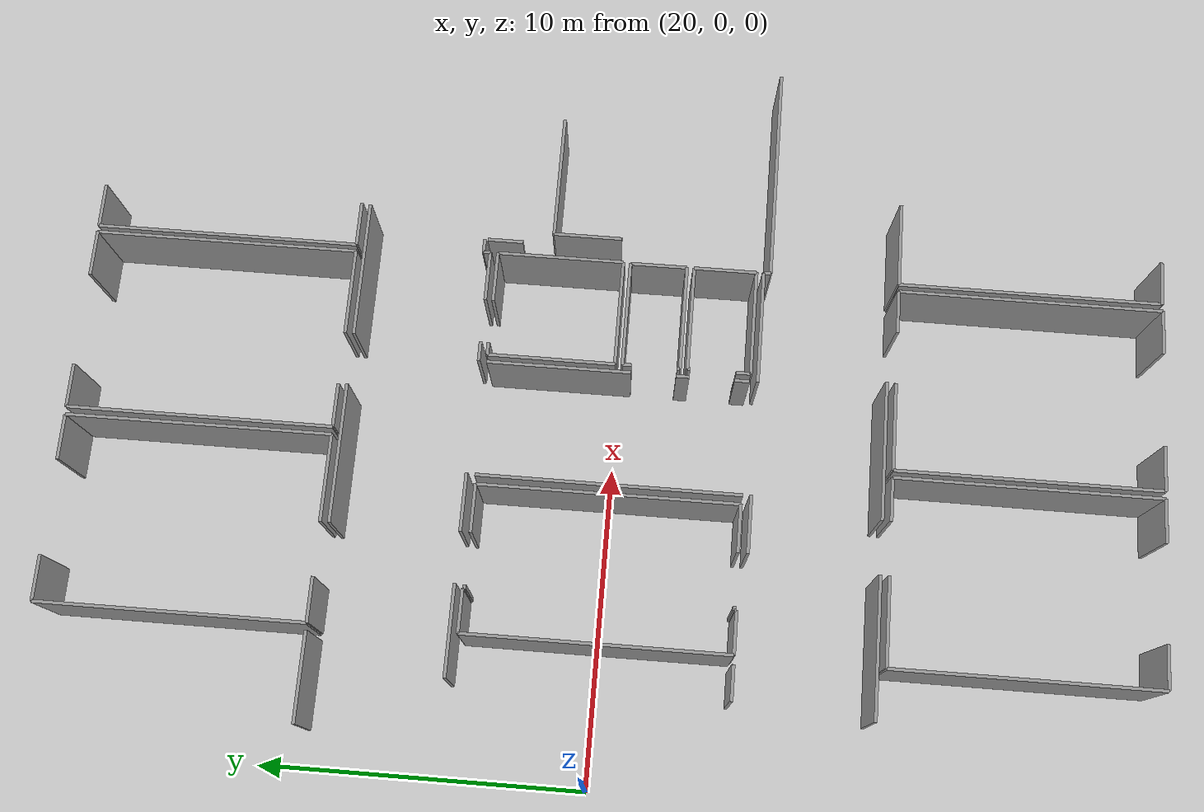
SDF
<sdf version="1.6">
 <world name="default">
  <model name="ground_plane">
   <static>1</static>
   <link name="link">
    <collision name="collision">
     <geometry><plane><normal>0 0 1</normal><size>100 100</size></plane></geometry>
     <surface><friction><ode><mu>100</mu><mu2>50</mu2></ode></friction></surface>
    </collision>
    <visual name="visual">
     <cast_shadows>0</cast_shadows>
     <geometry><plane><normal>0 0 1</normal><size>100 100</size></plane></geometry>
     <material>
      <script><uri>file://media/materials/scripts/gazebo.material</uri><name>Gazebo/Grey</name></script>
     </material>
    </visual>
   </link>
  </model>
  <model name="50041184">
   <static>1</static>
   <link name="Wall_49">
    <collision name="Wall_49_Collision">
     <geometry><box><size>0.423254898725 0.1 2.5</size></box></geometry>
     <pose>0.211627449362 0 1.25 0 0 0</pose>
    </collision>
    <visual name="Wall_49_Visual">
     <pose>0.211627449362 0 1.25 0 0 0</pose>
     <geometry><box><size>0.423254898725 0.1 2.5</size></box></geometry>
     <material>
      <script><uri>file://media/materials/scripts/gazebo.material</uri><name>Gazebo/Grey</name></script>
      <ambient>1 1 1 1</ambient>
     </material>
    </visual>
    <pose>108.208034734 -12.2510330644 0 0 0 3.14159265359</pose>
   </link>
   <link name="Wall_50">
    <collision name="Wall_50_Collision">
     <geometry><box><size>0.207057210504 0.1 2.5</size></box></geometry>
     <pose>0.103528605252 0 1.25 0 0 0</pose>
    </collision>
    <visual name="Wall_50_Visual">
     <pose>0.103528605252 0 1.25 0 0 0</pose>
     <geometry><box><size>0.207057210504 0.1 2.5</size></box></geometry>
     <material>
      <script><uri>file://media/materials/scripts/gazebo.material</uri><name>Gazebo/Grey</name></script>
      <ambient>1 1 1 1</ambient>
     </material>
    </visual>
    <pose>107.784779835 -12.2510330644 0 0 0 -1.57079632679</pose>
   </link>
   <link name="Wall_51">
    <collision name="Wall_51_Collision">
     <geometry><box><size>1.57698630833 0.1 2.5</size></box></geometry>
     <pose>0.788493154163 0 1.25 0 0 0</pose>
    </collision>
    <visual name="Wall_51_Visual">
     <pose>0.788493154163 0 1.25 0 0 0</pose>
     <geometry><box><size>1.57698630833 0.1 2.5</size></box></geometry>
     <material>
      <script><uri>file://media/materials/scripts/gazebo.material</uri><name>Gazebo/Grey</name></script>
      <ambient>1 1 1 1</ambient>
     </material>
    </visual>
    <pose>107.784779835 -12.4580902749 0 0 0 3.14159265359</pose>
   </link>
   <link name="Wall_52">
    <collision name="Wall_52_Collision">
     <geometry><box><size>0.614824077542 0.1 2.5</size></box></geometry>
     <pose>0.307412038771 0 1.25 0 0 0</pose>
    </collision>
    <visual name="Wall_52_Visual">
     <pose>0.307412038771 0 1.25 0 0 0</pose>
     <geometry><box><size>0.614824077542 0.1 2.5</size></box></geometry>
     <material>
      <script><uri>file://media/materials/scripts/gazebo.material</uri><name>Gazebo/Grey</name></script>
      <ambient>1 1 1 1</ambient>
     </material>
    </visual>
    <pose>104.818313963 -12.4580902749 0 0 0 3.14159265359</pose>
   </link>
   <link name="Wall_53">
    <collision name="Wall_53_Collision">
     <geometry><box><size>1.8113380009 0.1 2.5</size></box></geometry>
     <pose>0.905669000451 0 1.25 0 0 0</pose>
    </collision>
    <visual name="Wall_53_Visual">
     <pose>0.905669000451 0 1.25 0 0 0</pose>
     <geometry><box><size>1.8113380009 0.1 2.5</size></box></geometry>
     <material>
      <script><uri>file://media/materials/scripts/gazebo.material</uri><name>Gazebo/Grey</name></script>
      <ambient>1 1 1 1</ambient>
     </material>
    </visual>
    <pose>100.629563098 -12.4580902749 0 0 0 3.14159265359</pose>
   </link>
   <link name="Wall_54">
    <collision name="Wall_54_Collision">
     <geometry><box><size>2.79457411087 0.1 2.5</size></box></geometry>
     <pose>1.39728705543 0 1.25 0 0 0</pose>
    </collision>
    <visual name="Wall_54_Visual">
     <pose>1.39728705543 0 1.25 0 0 0</pose>
     <geometry><box><size>2.79457411087 0.1 2.5</size></box></geometry>
     <material>
      <script><uri>file://media/materials/scripts/gazebo.material</uri><name>Gazebo/Grey</name></script>
      <ambient>1 1 1 1</ambient>
     </material>
    </visual>
    <pose>97.2345103814 -12.4580902749 0 0 0 3.14159265359</pose>
   </link>
   <link name="Wall_70">
    <collision name="Wall_70_Collision">
     <geometry><box><size>4.35810360478 0.1 2.5</size></box></geometry>
     <pose>2.17905180239 0 1.25 0 0 0</pose>
    </collision>
    <visual name="Wall_70_Visual">
     <pose>2.17905180239 0 1.25 0 0 0</pose>
     <geometry><box><size>4.35810360478 0.1 2.5</size></box></geometry>
     <material>
      <script><uri>file://media/materials/scripts/gazebo.material</uri><name>Gazebo/Grey</name></script>
      <ambient>1 1 1 1</ambient>
     </material>
    </visual>
    <pose>98.7753156321 -8.4970896465 0 0 0 0.0</pose>
   </link>
   <link name="Wall_71">
    <collision name="Wall_71_Collision">
     <geometry><box><size>4.32141474283 0.1 2.5</size></box></geometry>
     <pose>2.16070737141 0 1.25 0 0 0</pose>
    </collision>
    <visual name="Wall_71_Visual">
     <pose>2.16070737141 0 1.25 0 0 0</pose>
     <geometry><box><size>4.32141474283 0.1 2.5</size></box></geometry>
     <material>
      <script><uri>file://media/materials/scripts/gazebo.material</uri><name>Gazebo/Grey</name></script>
      <ambient>1 1 1 1</ambient>
     </material>
    </visual>
    <pose>104.779593883 -8.4970896465 0 0 0 0.0</pose>
   </link>
   <link name="Wall_111">
    <collision name="Wall_111_Collision">
     <geometry><box><size>2.73630356542 0.1 2.5</size></box></geometry>
     <pose>1.36815178271 0 1.25 0 0 0</pose>
    </collision>
    <visual name="Wall_111_Visual">
     <pose>1.36815178271 0 1.25 0 0 0</pose>
     <geometry><box><size>2.73630356542 0.1 2.5</size></box></geometry>
     <material>
      <script><uri>file://media/materials/scripts/gazebo.material</uri><name>Gazebo/Grey</name></script>
      <ambient>1 1 1 1</ambient>
     </material>
    </visual>
    <pose>95.5115303318 -8.23163493948 0 0 0 3.14159265359</pose>
   </link>
   <link name="Wall_117">
    <collision name="Wall_117_Collision">
     <geometry><box><size>2.71675309919 0.1 2.5</size></box></geometry>
     <pose>1.3583765496 0 1.25 0 0 0</pose>
    </collision>
    <visual name="Wall_117_Visual">
     <pose>1.3583765496 0 1.25 0 0 0</pose>
     <geometry><box><size>2.71675309919 0.1 2.5</size></box></geometry>
     <material>
      <script><uri>file://media/materials/scripts/gazebo.material</uri><name>Gazebo/Grey</name></script>
      <ambient>1 1 1 1</ambient>
     </material>
    </visual>
    <pose>101.504256035 -8.22769945601 0 0 0 3.14159265359</pose>
   </link>
   <link name="Wall_118">
    <collision name="Wall_118_Collision">
     <geometry><box><size>1.38986041729 0.1 2.5</size></box></geometry>
     <pose>0.694930208644 0 1.25 0 0 0</pose>
    </collision>
    <visual name="Wall_118_Visual">
     <pose>0.694930208644 0 1.25 0 0 0</pose>
     <geometry><box><size>1.38986041729 0.1 2.5</size></box></geometry>
     <material>
      <script><uri>file://media/materials/scripts/gazebo.material</uri><name>Gazebo/Grey</name></script>
      <ambient>1 1 1 1</ambient>
     </material>
    </visual>
    <pose>97.1145416114 -8.22769945601 0 0 0 3.14159265359</pose>
   </link>
   <link name="Wall_119">
    <collision name="Wall_119_Collision">
     <geometry><box><size>8.20357875093 0.1 2.5</size></box></geometry>
     <pose>4.10178937546 0 1.25 0 0 0</pose>
    </collision>
    <visual name="Wall_119_Visual">
     <pose>4.10178937546 0 1.25 0 0 0</pose>
     <geometry><box><size>8.20357875093 0.1 2.5</size></box></geometry>
     <material>
      <script><uri>file://media/materials/scripts/gazebo.material</uri><name>Gazebo/Grey</name></script>
      <ambient>1 1 1 1</ambient>
     </material>
    </visual>
    <pose>95.7246811941 -8.22769945601 0 0 0 1.57079632679</pose>
   </link>
   <link name="Wall_120">
    <collision name="Wall_120_Collision">
     <geometry><box><size>1.39874699285 0.1 2.5</size></box></geometry>
     <pose>0.699373496423 0 1.25 0 0 0</pose>
    </collision>
    <visual name="Wall_120_Visual">
     <pose>0.699373496423 0 1.25 0 0 0</pose>
     <geometry><box><size>1.39874699285 0.1 2.5</size></box></geometry>
     <material>
      <script><uri>file://media/materials/scripts/gazebo.material</uri><name>Gazebo/Grey</name></script>
      <ambient>1 1 1 1</ambient>
     </material>
    </visual>
    <pose>95.7246811941 -0.0241207050863 0 0 0 0.0</pose>
   </link>
   <link name="Wall_121">
    <collision name="Wall_121_Collision">
     <geometry><box><size>1.42693013247 0.1 2.5</size></box></geometry>
     <pose>0.713465066237 0 1.25 0 0 0</pose>
    </collision>
    <visual name="Wall_121_Visual">
     <pose>0.713465066237 0 1.25 0 0 0</pose>
     <geometry><box><size>1.42693013247 0.1 2.5</size></box></geometry>
     <material>
      <script><uri>file://media/materials/scripts/gazebo.material</uri><name>Gazebo/Grey</name></script>
      <ambient>1 1 1 1</ambient>
     </material>
    </visual>
    <pose>100.06526555 -0.0241207050863 0 0 0 0.0</pose>
   </link>
   <link name="Wall_122">
    <collision name="Wall_122_Collision">
     <geometry><box><size>8.20358761609 0.1 2.5</size></box></geometry>
     <pose>4.10179380804 0 1.25 0 0 0</pose>
    </collision>
    <visual name="Wall_122_Visual">
     <pose>4.10179380804 0 1.25 0 0 0</pose>
     <geometry><box><size>8.20358761609 0.1 2.5</size></box></geometry>
     <material>
      <script><uri>file://media/materials/scripts/gazebo.material</uri><name>Gazebo/Grey</name></script>
      <ambient>1 1 1 1</ambient>
     </material>
    </visual>
    <pose>101.492195682 -0.0241207050863 0 0 0 -1.56932619477</pose>
   </link>
   <link name="Wall_123">
    <collision name="Wall_123_Collision">
     <geometry><box><size>2.72183114237 0.1 2.5</size></box></geometry>
     <pose>1.36091557118 0 1.25 0 0 0</pose>
    </collision>
    <visual name="Wall_123_Visual">
     <pose>1.36091557118 0 1.25 0 0 0</pose>
     <geometry><box><size>2.72183114237 0.1 2.5</size></box></geometry>
     <material>
      <script><uri>file://media/materials/scripts/gazebo.material</uri><name>Gazebo/Grey</name></script>
      <ambient>1 1 1 1</ambient>
     </material>
    </visual>
    <pose>107.497870396 -8.23100018408 0 0 0 3.14159265359</pose>
   </link>
   <link name="Wall_124">
    <collision name="Wall_124_Collision">
     <geometry><box><size>1.36904044027 0.1 2.5</size></box></geometry>
     <pose>0.684520220133 0 1.25 0 0 0</pose>
    </collision>
    <visual name="Wall_124_Visual">
     <pose>0.684520220133 0 1.25 0 0 0</pose>
     <geometry><box><size>1.36904044027 0.1 2.5</size></box></geometry>
     <material>
      <script><uri>file://media/materials/scripts/gazebo.material</uri><name>Gazebo/Grey</name></script>
      <ambient>1 1 1 1</ambient>
     </material>
    </visual>
    <pose>103.108790727 -8.23100018408 0 0 0 3.14159265359</pose>
   </link>
   <link name="Wall_125">
    <collision name="Wall_125_Collision">
     <geometry><box><size>8.22300226608 0.1 2.5</size></box></geometry>
     <pose>4.11150113304 0 1.25 0 0 0</pose>
    </collision>
    <visual name="Wall_125_Visual">
     <pose>4.11150113304 0 1.25 0 0 0</pose>
     <geometry><box><size>8.22300226608 0.1 2.5</size></box></geometry>
     <material>
      <script><uri>file://media/materials/scripts/gazebo.material</uri><name>Gazebo/Grey</name></script>
      <ambient>1 1 1 1</ambient>
     </material>
    </visual>
    <pose>101.739750287 -8.23100018408 0 0 0 1.57079632679</pose>
   </link>
   <link name="Wall_126">
    <collision name="Wall_126_Collision">
     <geometry><box><size>1.36066166903 0.1 2.5</size></box></geometry>
     <pose>0.680330834513 0 1.25 0 0 0</pose>
    </collision>
    <visual name="Wall_126_Visual">
     <pose>0.680330834513 0 1.25 0 0 0</pose>
     <geometry><box><size>1.36066166903 0.1 2.5</size></box></geometry>
     <material>
      <script><uri>file://media/materials/scripts/gazebo.material</uri><name>Gazebo/Grey</name></script>
      <ambient>1 1 1 1</ambient>
     </material>
    </visual>
    <pose>101.739750287 -0.0079979180023 0 0 0 0.0</pose>
   </link>
   <link name="Wall_127">
    <collision name="Wall_127_Collision">
     <geometry><box><size>1.45244729943 0.1 2.5</size></box></geometry>
     <pose>0.726223649717 0 1.25 0 0 0</pose>
    </collision>
    <visual name="Wall_127_Visual">
     <pose>0.726223649717 0 1.25 0 0 0</pose>
     <geometry><box><size>1.45244729943 0.1 2.5</size></box></geometry>
     <material>
      <script><uri>file://media/materials/scripts/gazebo.material</uri><name>Gazebo/Grey</name></script>
      <ambient>1 1 1 1</ambient>
     </material>
    </visual>
    <pose>106.05532528 -0.0079979180023 0 0 0 0.0</pose>
   </link>
   <link name="Wall_128">
    <collision name="Wall_128_Collision">
     <geometry><box><size>8.22300822821 0.1 2.5</size></box></geometry>
     <pose>4.1115041141 0 1.25 0 0 0</pose>
    </collision>
    <visual name="Wall_128_Visual">
     <pose>4.1115041141 0 1.25 0 0 0</pose>
     <geometry><box><size>8.22300822821 0.1 2.5</size></box></geometry>
     <material>
      <script><uri>file://media/materials/scripts/gazebo.material</uri><name>Gazebo/Grey</name></script>
      <ambient>1 1 1 1</ambient>
     </material>
    </visual>
    <pose>107.50777258 -0.0079979180023 0 0 0 -1.57200053167</pose>
   </link>
   <link name="Wall_132">
    <collision name="Wall_132_Collision">
     <geometry><box><size>1.41068039431 0.1 2.5</size></box></geometry>
     <pose>0.705340197155 0 1.25 0 0 0</pose>
    </collision>
    <visual name="Wall_132_Visual">
     <pose>0.705340197155 0 1.25 0 0 0</pose>
     <geometry><box><size>1.41068039431 0.1 2.5</size></box></geometry>
     <material>
      <script><uri>file://media/materials/scripts/gazebo.material</uri><name>Gazebo/Grey</name></script>
      <ambient>1 1 1 1</ambient>
     </material>
    </visual>
    <pose>109.127033598 -8.22198665744 0 0 0 3.14159265359</pose>
   </link>
   <link name="Wall_133">
    <collision name="Wall_133_Collision">
     <geometry><box><size>8.20751423439 0.1 2.5</size></box></geometry>
     <pose>4.10375711719 0 1.25 0 0 0</pose>
    </collision>
    <visual name="Wall_133_Visual">
     <pose>4.10375711719 0 1.25 0 0 0</pose>
     <geometry><box><size>8.20751423439 0.1 2.5</size></box></geometry>
     <material>
      <script><uri>file://media/materials/scripts/gazebo.material</uri><name>Gazebo/Grey</name></script>
      <ambient>1 1 1 1</ambient>
     </material>
    </visual>
    <pose>107.716353203 -8.22198665744 0 0 0 1.57079632679</pose>
   </link>
   <link name="Wall_134">
    <collision name="Wall_134_Collision">
     <geometry><box><size>1.37843482014 0.1 2.5</size></box></geometry>
     <pose>0.689217410071 0 1.25 0 0 0</pose>
    </collision>
    <visual name="Wall_134_Visual">
     <pose>0.689217410071 0 1.25 0 0 0</pose>
     <geometry><box><size>1.37843482014 0.1 2.5</size></box></geometry>
     <material>
      <script><uri>file://media/materials/scripts/gazebo.material</uri><name>Gazebo/Grey</name></script>
      <ambient>1 1 1 1</ambient>
     </material>
    </visual>
    <pose>107.716353203 -0.0144724230518 0 0 0 0.0</pose>
   </link>
   <link name="Wall_180">
    <collision name="Wall_180_Collision">
     <geometry><box><size>2.15245555125 0.1 2.5</size></box></geometry>
     <pose>1.07622777563 0 1.25 0 0 0</pose>
    </collision>
    <visual name="Wall_180_Visual">
     <pose>1.07622777563 0 1.25 0 0 0</pose>
     <geometry><box><size>2.15245555125 0.1 2.5</size></box></geometry>
     <material>
      <script><uri>file://media/materials/scripts/gazebo.material</uri><name>Gazebo/Grey</name></script>
      <ambient>1 1 1 1</ambient>
     </material>
    </visual>
    <pose>108.568575799 -16.5629264763 0 0 0 1.57079632679</pose>
   </link>
   <link name="Wall_181">
    <collision name="Wall_181_Collision">
     <geometry><box><size>3.97547305146 0.1 2.5</size></box></geometry>
     <pose>1.98773652573 0 1.25 0 0 0</pose>
    </collision>
    <visual name="Wall_181_Visual">
     <pose>1.98773652573 0 1.25 0 0 0</pose>
     <geometry><box><size>3.97547305146 0.1 2.5</size></box></geometry>
     <material>
      <script><uri>file://media/materials/scripts/gazebo.material</uri><name>Gazebo/Grey</name></script>
      <ambient>1 1 1 1</ambient>
     </material>
    </visual>
    <pose>108.568575799 -14.410470925 0 0 0 0.0</pose>
   </link>
   <link name="Wall_185">
    <collision name="Wall_185_Collision">
     <geometry><box><size>1.11424962391 0.1 2.5</size></box></geometry>
     <pose>0.557124811954 0 1.25 0 0 0</pose>
    </collision>
    <visual name="Wall_185_Visual">
     <pose>0.557124811954 0 1.25 0 0 0</pose>
     <geometry><box><size>1.11424962391 0.1 2.5</size></box></geometry>
     <material>
      <script><uri>file://media/materials/scripts/gazebo.material</uri><name>Gazebo/Grey</name></script>
      <ambient>1 1 1 1</ambient>
     </material>
    </visual>
    <pose>108.215651799 -13.4598612425 0 0 0 1.57079632679</pose>
   </link>
   <link name="Wall_187">
    <collision name="Wall_187_Collision">
     <geometry><box><size>3.37537529913 0.1 2.5</size></box></geometry>
     <pose>1.68768764956 0 1.25 0 0 0</pose>
    </collision>
    <visual name="Wall_187_Visual">
     <pose>1.68768764956 0 1.25 0 0 0</pose>
     <geometry><box><size>3.37537529913 0.1 2.5</size></box></geometry>
     <material>
      <script><uri>file://media/materials/scripts/gazebo.material</uri><name>Gazebo/Grey</name></script>
      <ambient>1 1 1 1</ambient>
     </material>
    </visual>
    <pose>107.793031655 -16.6651220952 0 0 0 3.14159265359</pose>
   </link>
   <link name="Wall_188">
    <collision name="Wall_188_Collision">
     <geometry><box><size>3.96265099244 0.1 2.5</size></box></geometry>
     <pose>1.98132549622 0 1.25 0 0 0</pose>
    </collision>
    <visual name="Wall_188_Visual">
     <pose>1.98132549622 0 1.25 0 0 0</pose>
     <geometry><box><size>3.96265099244 0.1 2.5</size></box></geometry>
     <material>
      <script><uri>file://media/materials/scripts/gazebo.material</uri><name>Gazebo/Grey</name></script>
      <ambient>1 1 1 1</ambient>
     </material>
    </visual>
    <pose>104.417656356 -16.6651220952 0 0 0 1.57079632679</pose>
   </link>
   <link name="Wall_189">
    <collision name="Wall_189_Collision">
     <geometry><box><size>0.389612862683 0.1 2.5</size></box></geometry>
     <pose>0.194806431342 0 1.25 0 0 0</pose>
    </collision>
    <visual name="Wall_189_Visual">
     <pose>0.194806431342 0 1.25 0 0 0</pose>
     <geometry><box><size>0.389612862683 0.1 2.5</size></box></geometry>
     <material>
      <script><uri>file://media/materials/scripts/gazebo.material</uri><name>Gazebo/Grey</name></script>
      <ambient>1 1 1 1</ambient>
     </material>
    </visual>
    <pose>104.417656356 -12.7024711028 0 0 0 0.0</pose>
   </link>
   <link name="Wall_190">
    <collision name="Wall_190_Collision">
     <geometry><box><size>1.58384166661 0.1 2.5</size></box></geometry>
     <pose>0.791920833307 0 1.25 0 0 0</pose>
    </collision>
    <visual name="Wall_190_Visual">
     <pose>0.791920833307 0 1.25 0 0 0</pose>
     <geometry><box><size>1.58384166661 0.1 2.5</size></box></geometry>
     <material>
      <script><uri>file://media/materials/scripts/gazebo.material</uri><name>Gazebo/Grey</name></script>
      <ambient>1 1 1 1</ambient>
     </material>
    </visual>
    <pose>106.205127554 -12.7024711028 0 0 0 0.0</pose>
   </link>
   <link name="Wall_191">
    <collision name="Wall_191_Collision">
     <geometry><box><size>3.9626530748 0.1 2.5</size></box></geometry>
     <pose>1.9813265374 0 1.25 0 0 0</pose>
    </collision>
    <visual name="Wall_191_Visual">
     <pose>1.9813265374 0 1.25 0 0 0</pose>
     <geometry><box><size>3.9626530748 0.1 2.5</size></box></geometry>
     <material>
      <script><uri>file://media/materials/scripts/gazebo.material</uri><name>Gazebo/Grey</name></script>
      <ambient>1 1 1 1</ambient>
     </material>
    </visual>
    <pose>107.788969221 -12.7024711028 0 0 0 -1.56977114615</pose>
   </link>
   <link name="Wall_192">
    <collision name="Wall_192_Collision">
     <geometry><box><size>3.33894033934 0.1 2.5</size></box></geometry>
     <pose>1.66947016967 0 1.25 0 0 0</pose>
    </collision>
    <visual name="Wall_192_Visual">
     <pose>1.66947016967 0 1.25 0 0 0</pose>
     <geometry><box><size>3.33894033934 0.1 2.5</size></box></geometry>
     <material>
      <script><uri>file://media/materials/scripts/gazebo.material</uri><name>Gazebo/Grey</name></script>
      <ambient>1 1 1 1</ambient>
     </material>
    </visual>
    <pose>107.76649888 -18.6760271929 0 0 0 3.14159265359</pose>
   </link>
   <link name="Wall_193">
    <collision name="Wall_193_Collision">
     <geometry><box><size>0.0845494188814 0.1 2.5</size></box></geometry>
     <pose>0.0422747094407 0 1.25 0 0 0</pose>
    </collision>
    <visual name="Wall_193_Visual">
     <pose>0.0422747094407 0 1.25 0 0 0</pose>
     <geometry><box><size>0.0845494188814 0.1 2.5</size></box></geometry>
     <material>
      <script><uri>file://media/materials/scripts/gazebo.material</uri><name>Gazebo/Grey</name></script>
      <ambient>1 1 1 1</ambient>
     </material>
    </visual>
    <pose>104.42755854 -18.6760271929 0 0 0 1.57079632679</pose>
   </link>
   <link name="Wall_194">
    <collision name="Wall_194_Collision">
     <geometry><box><size>0.287290292686 0.1 2.5</size></box></geometry>
     <pose>0.143645146343 0 1.25 0 0 0</pose>
    </collision>
    <visual name="Wall_194_Visual">
     <pose>0.143645146343 0 1.25 0 0 0</pose>
     <geometry><box><size>0.287290292686 0.1 2.5</size></box></geometry>
     <material>
      <script><uri>file://media/materials/scripts/gazebo.material</uri><name>Gazebo/Grey</name></script>
      <ambient>1 1 1 1</ambient>
     </material>
    </visual>
    <pose>104.42755854 -17.1849867653 0 0 0 1.57079632679</pose>
   </link>
   <link name="Wall_195">
    <collision name="Wall_195_Collision">
     <geometry><box><size>3.33170412781 0.1 2.5</size></box></geometry>
     <pose>1.66585206391 0 1.25 0 0 0</pose>
    </collision>
    <visual name="Wall_195_Visual">
     <pose>1.66585206391 0 1.25 0 0 0</pose>
     <geometry><box><size>3.33170412781 0.1 2.5</size></box></geometry>
     <material>
      <script><uri>file://media/materials/scripts/gazebo.material</uri><name>Gazebo/Grey</name></script>
      <ambient>1 1 1 1</ambient>
     </material>
    </visual>
    <pose>104.42755854 -16.8976964727 0 0 0 0.0</pose>
   </link>
   <link name="Wall_196">
    <collision name="Wall_196_Collision">
     <geometry><box><size>1.77834544264 0.1 2.5</size></box></geometry>
     <pose>0.889172721321 0 1.25 0 0 0</pose>
    </collision>
    <visual name="Wall_196_Visual">
     <pose>0.889172721321 0 1.25 0 0 0</pose>
     <geometry><box><size>1.77834544264 0.1 2.5</size></box></geometry>
     <material>
      <script><uri>file://media/materials/scripts/gazebo.material</uri><name>Gazebo/Grey</name></script>
      <ambient>1 1 1 1</ambient>
     </material>
    </visual>
    <pose>107.759262668 -16.8976964727 0 0 0 -1.56672724588</pose>
   </link>
   <link name="Wall_197">
    <collision name="Wall_197_Collision">
     <geometry><box><size>3.33157717673 0.1 2.5</size></box></geometry>
     <pose>1.66578858837 0 1.25 0 0 0</pose>
    </collision>
    <visual name="Wall_197_Visual">
     <pose>1.66578858837 0 1.25 0 0 0</pose>
     <geometry><box><size>3.33157717673 0.1 2.5</size></box></geometry>
     <material>
      <script><uri>file://media/materials/scripts/gazebo.material</uri><name>Gazebo/Grey</name></script>
      <ambient>1 1 1 1</ambient>
     </material>
    </visual>
    <pose>107.771069119 -20.8637751442 0 0 0 3.14159265359</pose>
   </link>
   <link name="Wall_198">
    <collision name="Wall_198_Collision">
     <geometry><box><size>0.455627423972 0.1 2.5</size></box></geometry>
     <pose>0.227813711986 0 1.25 0 0 0</pose>
    </collision>
    <visual name="Wall_198_Visual">
     <pose>0.227813711986 0 1.25 0 0 0</pose>
     <geometry><box><size>0.455627423972 0.1 2.5</size></box></geometry>
     <material>
      <script><uri>file://media/materials/scripts/gazebo.material</uri><name>Gazebo/Grey</name></script>
      <ambient>1 1 1 1</ambient>
     </material>
    </visual>
    <pose>104.439491942 -20.8637751442 0 0 0 1.57079632679</pose>
   </link>
   <link name="Wall_199">
    <collision name="Wall_199_Collision">
     <geometry><box><size>0.0906430706927 0.1 2.5</size></box></geometry>
     <pose>0.0453215353464 0 1.25 0 0 0</pose>
    </collision>
    <visual name="Wall_199_Visual">
     <pose>0.0453215353464 0 1.25 0 0 0</pose>
     <geometry><box><size>0.0906430706927 0.1 2.5</size></box></geometry>
     <material>
      <script><uri>file://media/materials/scripts/gazebo.material</uri><name>Gazebo/Grey</name></script>
      <ambient>1 1 1 1</ambient>
     </material>
    </visual>
    <pose>104.439491942 -18.9969595216 0 0 0 1.57079632679</pose>
   </link>
   <link name="Wall_200">
    <collision name="Wall_200_Collision">
     <geometry><box><size>3.32726084004 0.1 2.5</size></box></geometry>
     <pose>1.66363042002 0 1.25 0 0 0</pose>
    </collision>
    <visual name="Wall_200_Visual">
     <pose>1.66363042002 0 1.25 0 0 0</pose>
     <geometry><box><size>3.32726084004 0.1 2.5</size></box></geometry>
     <material>
      <script><uri>file://media/materials/scripts/gazebo.material</uri><name>Gazebo/Grey</name></script>
      <ambient>1 1 1 1</ambient>
     </material>
    </visual>
    <pose>104.439491942 -18.906316451 0 0 0 0.0</pose>
   </link>
   <link name="Wall_201">
    <collision name="Wall_201_Collision">
     <geometry><box><size>1.9574634522 0.1 2.5</size></box></geometry>
     <pose>0.978731726101 0 1.25 0 0 0</pose>
    </collision>
    <visual name="Wall_201_Visual">
     <pose>0.978731726101 0 1.25 0 0 0</pose>
     <geometry><box><size>1.9574634522 0.1 2.5</size></box></geometry>
     <material>
      <script><uri>file://media/materials/scripts/gazebo.material</uri><name>Gazebo/Grey</name></script>
      <ambient>1 1 1 1</ambient>
     </material>
    </visual>
    <pose>107.766752782 -18.906316451 0 0 0 -1.5685912587</pose>
   </link>
   <link name="Wall_202">
    <collision name="Wall_202_Collision">
     <geometry><box><size>8.13451736373 0.1 2.5</size></box></geometry>
     <pose>4.06725868187 0 1.25 0 0 0</pose>
    </collision>
    <visual name="Wall_202_Visual">
     <pose>4.06725868187 0 1.25 0 0 0</pose>
     <geometry><box><size>8.13451736373 0.1 2.5</size></box></geometry>
     <material>
      <script><uri>file://media/materials/scripts/gazebo.material</uri><name>Gazebo/Grey</name></script>
      <ambient>1 1 1 1</ambient>
     </material>
    </visual>
    <pose>100.592366432 -20.8462558953 0 0 0 1.57079632679</pose>
   </link>
   <link name="Wall_203">
    <collision name="Wall_203_Collision">
     <geometry><box><size>4.4750255489 0.1 2.5</size></box></geometry>
     <pose>2.23751277445 0 1.25 0 0 0</pose>
    </collision>
    <visual name="Wall_203_Visual">
     <pose>2.23751277445 0 1.25 0 0 0</pose>
     <geometry><box><size>4.4750255489 0.1 2.5</size></box></geometry>
     <material>
      <script><uri>file://media/materials/scripts/gazebo.material</uri><name>Gazebo/Grey</name></script>
      <ambient>1 1 1 1</ambient>
     </material>
    </visual>
    <pose>104.188128805 -12.7117385316 0 0 0 -1.57079632679</pose>
   </link>
   <link name="Wall_204">
    <collision name="Wall_204_Collision">
     <geometry><box><size>0.406497356244 0.1 2.5</size></box></geometry>
     <pose>0.203248678122 0 1.25 0 0 0</pose>
    </collision>
    <visual name="Wall_204_Visual">
     <pose>0.203248678122 0 1.25 0 0 0</pose>
     <geometry><box><size>0.406497356244 0.1 2.5</size></box></geometry>
     <material>
      <script><uri>file://media/materials/scripts/gazebo.material</uri><name>Gazebo/Grey</name></script>
      <ambient>1 1 1 1</ambient>
     </material>
    </visual>
    <pose>104.188128805 -18.5743393783 0 0 0 -1.57079632679</pose>
   </link>
   <link name="Wall_205">
    <collision name="Wall_205_Collision">
     <geometry><box><size>0.465783510324 0.1 2.5</size></box></geometry>
     <pose>0.232891755162 0 1.25 0 0 0</pose>
    </collision>
    <visual name="Wall_205_Visual">
     <pose>0.232891755162 0 1.25 0 0 0</pose>
     <geometry><box><size>0.465783510324 0.1 2.5</size></box></geometry>
     <material>
      <script><uri>file://media/materials/scripts/gazebo.material</uri><name>Gazebo/Grey</name></script>
      <ambient>1 1 1 1</ambient>
     </material>
    </visual>
    <pose>104.188128805 -20.380472385 0 0 0 -1.57079632679</pose>
   </link>
   <link name="Wall_206">
    <collision name="Wall_206_Collision">
     <geometry><box><size>1.48799360167 0.1 2.5</size></box></geometry>
     <pose>0.743996800833 0 1.25 0 0 0</pose>
    </collision>
    <visual name="Wall_206_Visual">
     <pose>0.743996800833 0 1.25 0 0 0</pose>
     <geometry><box><size>1.48799360167 0.1 2.5</size></box></geometry>
     <material>
      <script><uri>file://media/materials/scripts/gazebo.material</uri><name>Gazebo/Grey</name></script>
      <ambient>1 1 1 1</ambient>
     </material>
    </visual>
    <pose>100.312058448 -20.7954754635 0 0 0 3.14159265359</pose>
   </link>
   <link name="Wall_207">
    <collision name="Wall_207_Collision">
     <geometry><box><size>0.112605607429 0.1 2.5</size></box></geometry>
     <pose>0.0563028037146 0 1.25 0 0 0</pose>
    </collision>
    <visual name="Wall_207_Visual">
     <pose>0.0563028037146 0 1.25 0 0 0</pose>
     <geometry><box><size>0.112605607429 0.1 2.5</size></box></geometry>
     <material>
      <script><uri>file://media/materials/scripts/gazebo.material</uri><name>Gazebo/Grey</name></script>
      <ambient>1 1 1 1</ambient>
     </material>
    </visual>
    <pose>97.2112783339 -20.7954754635 0 0 0 3.14159265359</pose>
   </link>
   <link name="Wall_208">
    <collision name="Wall_208_Collision">
     <geometry><box><size>0.0572549368101 0.1 2.5</size></box></geometry>
     <pose>0.028627468405 0 1.25 0 0 0</pose>
    </collision>
    <visual name="Wall_208_Visual">
     <pose>0.028627468405 0 1.25 0 0 0</pose>
     <geometry><box><size>0.0572549368101 0.1 2.5</size></box></geometry>
     <material>
      <script><uri>file://media/materials/scripts/gazebo.material</uri><name>Gazebo/Grey</name></script>
      <ambient>1 1 1 1</ambient>
     </material>
    </visual>
    <pose>97.0986727265 -20.7954754635 0 0 0 -1.57079632679</pose>
   </link>
   <link name="Wall_209">
    <collision name="Wall_209_Collision">
     <geometry><box><size>1.32536926895 0.1 2.5</size></box></geometry>
     <pose>0.662684634476 0 1.25 0 0 0</pose>
    </collision>
    <visual name="Wall_209_Visual">
     <pose>0.662684634476 0 1.25 0 0 0</pose>
     <geometry><box><size>1.32536926895 0.1 2.5</size></box></geometry>
     <material>
      <script><uri>file://media/materials/scripts/gazebo.material</uri><name>Gazebo/Grey</name></script>
      <ambient>1 1 1 1</ambient>
     </material>
    </visual>
    <pose>97.0986727265 -20.8527304003 0 0 0 3.14159265359</pose>
   </link>
   <link name="Wall_210">
    <collision name="Wall_210_Collision">
     <geometry><box><size>8.14606991196 0.1 2.5</size></box></geometry>
     <pose>4.07303495598 0 1.25 0 0 0</pose>
    </collision>
    <visual name="Wall_210_Visual">
     <pose>4.07303495598 0 1.25 0 0 0</pose>
     <geometry><box><size>8.14606991196 0.1 2.5</size></box></geometry>
     <material>
      <script><uri>file://media/materials/scripts/gazebo.material</uri><name>Gazebo/Grey</name></script>
      <ambient>1 1 1 1</ambient>
     </material>
    </visual>
    <pose>95.7733034575 -20.8527304003 0 0 0 1.57079632679</pose>
   </link>
   <link name="Wall_211">
    <collision name="Wall_211_Collision">
     <geometry><box><size>1.32676573083 0.1 2.5</size></box></geometry>
     <pose>0.663382865413 0 1.25 0 0 0</pose>
    </collision>
    <visual name="Wall_211_Visual">
     <pose>0.663382865413 0 1.25 0 0 0</pose>
     <geometry><box><size>1.32676573083 0.1 2.5</size></box></geometry>
     <material>
      <script><uri>file://media/materials/scripts/gazebo.material</uri><name>Gazebo/Grey</name></script>
      <ambient>1 1 1 1</ambient>
     </material>
    </visual>
    <pose>95.7733034575 -12.7066604884 0 0 0 0.0</pose>
   </link>
   <link name="Wall_212">
    <collision name="Wall_212_Collision">
     <geometry><box><size>0.0572549368101 0.1 2.5</size></box></geometry>
     <pose>0.0286274684051 0 1.25 0 0 0</pose>
    </collision>
    <visual name="Wall_212_Visual">
     <pose>0.0286274684051 0 1.25 0 0 0</pose>
     <geometry><box><size>0.0572549368101 0.1 2.5</size></box></geometry>
     <material>
      <script><uri>file://media/materials/scripts/gazebo.material</uri><name>Gazebo/Grey</name></script>
      <ambient>1 1 1 1</ambient>
     </material>
    </visual>
    <pose>97.1000691883 -12.7066604884 0 0 0 -1.57079632679</pose>
   </link>
   <link name="Wall_213">
    <collision name="Wall_213_Collision">
     <geometry><box><size>0.11450987362 0.1 2.5</size></box></geometry>
     <pose>0.0572549368101 0 1.25 0 0 0</pose>
    </collision>
    <visual name="Wall_213_Visual">
     <pose>0.0572549368101 0 1.25 0 0 0</pose>
     <geometry><box><size>0.11450987362 0.1 2.5</size></box></geometry>
     <material>
      <script><uri>file://media/materials/scripts/gazebo.material</uri><name>Gazebo/Grey</name></script>
      <ambient>1 1 1 1</ambient>
     </material>
    </visual>
    <pose>97.1000691883 -12.7639154252 0 0 0 0.0</pose>
   </link>
   <link name="Wall_214">
    <collision name="Wall_214_Collision">
     <geometry><box><size>1.5025929758 0.1 2.5</size></box></geometry>
     <pose>0.751296487898 0 1.25 0 0 0</pose>
    </collision>
    <visual name="Wall_214_Visual">
     <pose>0.751296487898 0 1.25 0 0 0</pose>
     <geometry><box><size>1.5025929758 0.1 2.5</size></box></geometry>
     <material>
      <script><uri>file://media/materials/scripts/gazebo.material</uri><name>Gazebo/Grey</name></script>
      <ambient>1 1 1 1</ambient>
     </material>
    </visual>
    <pose>98.802229261 -12.7639154252 0 0 0 0.0</pose>
   </link>
   <link name="Wall_215">
    <collision name="Wall_215_Collision">
     <geometry><box><size>8.03156329815 0.1 2.5</size></box></geometry>
     <pose>4.01578164908 0 1.25 0 0 0</pose>
    </collision>
    <visual name="Wall_215_Visual">
     <pose>4.01578164908 0 1.25 0 0 0</pose>
     <geometry><box><size>8.03156329815 0.1 2.5</size></box></geometry>
     <material>
      <script><uri>file://media/materials/scripts/gazebo.material</uri><name>Gazebo/Grey</name></script>
      <ambient>1 1 1 1</ambient>
     </material>
    </visual>
    <pose>100.304822237 -12.7639154252 0 0 0 -1.56989535494</pose>
   </link>
   <link name="Wall_221">
    <collision name="Wall_221_Collision">
     <geometry><box><size>1.07578344685 0.1 2.5</size></box></geometry>
     <pose>0.537891723424 0 1.25 0 0 0</pose>
    </collision>
    <visual name="Wall_221_Visual">
     <pose>0.537891723424 0 1.25 0 0 0</pose>
     <geometry><box><size>1.07578344685 0.1 2.5</size></box></geometry>
     <material>
      <script><uri>file://media/materials/scripts/gazebo.material</uri><name>Gazebo/Grey</name></script>
      <ambient>1 1 1 1</ambient>
     </material>
    </visual>
    <pose>95.5044210713 -20.8581892968 0 0 0 3.14159265359</pose>
   </link>
   <link name="Wall_371">
    <collision name="Wall_371_Collision">
     <geometry><box><size>1.79648472461 0.1 2.5</size></box></geometry>
     <pose>0.898242362306 0 1.25 0 0 0</pose>
    </collision>
    <visual name="Wall_371_Visual">
     <pose>0.898242362306 0 1.25 0 0 0</pose>
     <geometry><box><size>1.79648472461 0.1 2.5</size></box></geometry>
     <material>
      <script><uri>file://media/materials/scripts/gazebo.material</uri><name>Gazebo/Grey</name></script>
      <ambient>1 1 1 1</ambient>
     </material>
    </visual>
    <pose>98.8164477818 -21.0927948915 0 0 0 0.0</pose>
   </link>
   <link name="Wall_372">
    <collision name="Wall_372_Collision">
     <geometry><box><size>3.59385810678 0.1 2.5</size></box></geometry>
     <pose>1.79692905339 0 1.25 0 0 0</pose>
    </collision>
    <visual name="Wall_372_Visual">
     <pose>1.79692905339 0 1.25 0 0 0</pose>
     <geometry><box><size>3.59385810678 0.1 2.5</size></box></geometry>
     <material>
      <script><uri>file://media/materials/scripts/gazebo.material</uri><name>Gazebo/Grey</name></script>
      <ambient>1 1 1 1</ambient>
     </material>
    </visual>
    <pose>104.189271364 -21.0927948915 0 0 0 0.0</pose>
   </link>
   <link name="Wall_373">
    <collision name="Wall_373_Collision">
     <geometry><box><size>0.208961476695 0.1 2.5</size></box></geometry>
     <pose>0.104480738347 0 1.25 0 0 0</pose>
    </collision>
    <visual name="Wall_373_Visual">
     <pose>0.104480738347 0 1.25 0 0 0</pose>
     <geometry><box><size>0.208961476695 0.1 2.5</size></box></geometry>
     <material>
      <script><uri>file://media/materials/scripts/gazebo.material</uri><name>Gazebo/Grey</name></script>
      <ambient>1 1 1 1</ambient>
     </material>
    </visual>
    <pose>107.783129471 -21.0927948915 0 0 0 -1.57079632679</pose>
   </link>
   <link name="Wall_374">
    <collision name="Wall_374_Collision">
     <geometry><box><size>6.82806380561 0.1 2.5</size></box></geometry>
     <pose>3.41403190281 0 1.25 0 0 0</pose>
    </collision>
    <visual name="Wall_374_Visual">
     <pose>3.41403190281 0 1.25 0 0 0</pose>
     <geometry><box><size>6.82806380561 0.1 2.5</size></box></geometry>
     <material>
      <script><uri>file://media/materials/scripts/gazebo.material</uri><name>Gazebo/Grey</name></script>
      <ambient>1 1 1 1</ambient>
     </material>
    </visual>
    <pose>107.783129471 -21.3017563682 0 0 0 0.0</pose>
   </link>
   <link name="Wall_382">
    <collision name="Wall_382_Collision">
     <geometry><box><size>4.3573418983 0.1 2.5</size></box></geometry>
     <pose>2.17867094915 0 1.25 0 0 0</pose>
    </collision>
    <visual name="Wall_382_Visual">
     <pose>2.17867094915 0 1.25 0 0 0</pose>
     <geometry><box><size>4.3573418983 0.1 2.5</size></box></geometry>
     <material>
      <script><uri>file://media/materials/scripts/gazebo.material</uri><name>Gazebo/Grey</name></script>
      <ambient>1 1 1 1</ambient>
     </material>
    </visual>
    <pose>104.511092351 -25.0634438019 0 0 0 3.14159265359</pose>
   </link>
   <link name="Wall_383">
    <collision name="Wall_383_Collision">
     <geometry><box><size>4.34058435582 0.1 2.5</size></box></geometry>
     <pose>2.17029217791 0 1.25 0 0 0</pose>
    </collision>
    <visual name="Wall_383_Visual">
     <pose>2.17029217791 0 1.25 0 0 0</pose>
     <geometry><box><size>4.34058435582 0.1 2.5</size></box></geometry>
     <material>
      <script><uri>file://media/materials/scripts/gazebo.material</uri><name>Gazebo/Grey</name></script>
      <ambient>1 1 1 1</ambient>
     </material>
    </visual>
    <pose>98.5011013006 -25.0634438019 0 0 0 3.14159265359</pose>
   </link>
   <link name="Wall_440">
    <collision name="Wall_440_Collision">
     <geometry><box><size>1.36739007623 0.1 2.5</size></box></geometry>
     <pose>0.683695038117 0 1.25 0 0 0</pose>
    </collision>
    <visual name="Wall_440_Visual">
     <pose>0.683695038117 0 1.25 0 0 0</pose>
     <geometry><box><size>1.36739007623 0.1 2.5</size></box></geometry>
     <material>
      <script><uri>file://media/materials/scripts/gazebo.material</uri><name>Gazebo/Grey</name></script>
      <ambient>1 1 1 1</ambient>
     </material>
    </visual>
    <pose>101.489402759 -33.5722129477 0 0 0 3.14159265359</pose>
   </link>
   <link name="Wall_441">
    <collision name="Wall_441_Collision">
     <geometry><box><size>1.36332764169 0.1 2.5</size></box></geometry>
     <pose>0.681663820847 0 1.25 0 0 0</pose>
    </collision>
    <visual name="Wall_441_Visual">
     <pose>0.681663820847 0 1.25 0 0 0</pose>
     <geometry><box><size>1.36332764169 0.1 2.5</size></box></geometry>
     <material>
      <script><uri>file://media/materials/scripts/gazebo.material</uri><name>Gazebo/Grey</name></script>
      <ambient>1 1 1 1</ambient>
     </material>
    </visual>
    <pose>97.0987996775 -33.5722129477 0 0 0 3.14159265359</pose>
   </link>
   <link name="Wall_442">
    <collision name="Wall_442_Collision">
     <geometry><box><size>8.23874419992 0.1 2.5</size></box></geometry>
     <pose>4.11937209996 0 1.25 0 0 0</pose>
    </collision>
    <visual name="Wall_442_Visual">
     <pose>4.11937209996 0 1.25 0 0 0</pose>
     <geometry><box><size>8.23874419992 0.1 2.5</size></box></geometry>
     <material>
      <script><uri>file://media/materials/scripts/gazebo.material</uri><name>Gazebo/Grey</name></script>
      <ambient>1 1 1 1</ambient>
     </material>
    </visual>
    <pose>95.7354720359 -33.5722129477 0 0 0 1.57079632679</pose>
   </link>
   <link name="Wall_443">
    <collision name="Wall_443_Collision">
     <geometry><box><size>2.74747526041 0.1 2.5</size></box></geometry>
     <pose>1.3737376302 0 1.25 0 0 0</pose>
    </collision>
    <visual name="Wall_443_Visual">
     <pose>1.3737376302 0 1.25 0 0 0</pose>
     <geometry><box><size>2.74747526041 0.1 2.5</size></box></geometry>
     <material>
      <script><uri>file://media/materials/scripts/gazebo.material</uri><name>Gazebo/Grey</name></script>
      <ambient>1 1 1 1</ambient>
     </material>
    </visual>
    <pose>95.7354720359 -25.3334687478 0 0 0 0.0</pose>
   </link>
   <link name="Wall_444">
    <collision name="Wall_444_Collision">
     <geometry><box><size>1.3583765496 0.1 2.5</size></box></geometry>
     <pose>0.679188274798 0 1.25 0 0 0</pose>
    </collision>
    <visual name="Wall_444_Visual">
     <pose>0.679188274798 0 1.25 0 0 0</pose>
     <geometry><box><size>1.3583765496 0.1 2.5</size></box></geometry>
     <material>
      <script><uri>file://media/materials/scripts/gazebo.material</uri><name>Gazebo/Grey</name></script>
      <ambient>1 1 1 1</ambient>
     </material>
    </visual>
    <pose>100.145879485 -25.3334687478 0 0 0 0.0</pose>
   </link>
   <link name="Wall_445">
    <collision name="Wall_445_Collision">
     <geometry><box><size>8.23875758908 0.1 2.5</size></box></geometry>
     <pose>4.11937879454 0 1.25 0 0 0</pose>
    </collision>
    <visual name="Wall_445_Visual">
     <pose>4.11937879454 0 1.25 0 0 0</pose>
     <geometry><box><size>8.23875758908 0.1 2.5</size></box></geometry>
     <material>
      <script><uri>file://media/materials/scripts/gazebo.material</uri><name>Gazebo/Grey</name></script>
      <ambient>1 1 1 1</ambient>
     </material>
    </visual>
    <pose>101.504256035 -25.3334687478 0 0 0 -1.57259918168</pose>
   </link>
   <link name="Wall_446">
    <collision name="Wall_446_Collision">
     <geometry><box><size>1.39709662881 0.1 2.5</size></box></geometry>
     <pose>0.698548314407 0 1.25 0 0 0</pose>
    </collision>
    <visual name="Wall_446_Visual">
     <pose>0.698548314407 0 1.25 0 0 0</pose>
     <geometry><box><size>1.39709662881 0.1 2.5</size></box></geometry>
     <material>
      <script><uri>file://media/materials/scripts/gazebo.material</uri><name>Gazebo/Grey</name></script>
      <ambient>1 1 1 1</ambient>
     </material>
    </visual>
    <pose>107.494188814 -33.5719590456 0 0 0 3.14159265359</pose>
   </link>
   <link name="Wall_447">
    <collision name="Wall_447_Collision">
     <geometry><box><size>1.40509454682 0.1 2.5</size></box></geometry>
     <pose>0.702547273408 0 1.25 0 0 0</pose>
    </collision>
    <visual name="Wall_447_Visual">
     <pose>0.702547273408 0 1.25 0 0 0</pose>
     <geometry><box><size>1.40509454682 0.1 2.5</size></box></geometry>
     <material>
      <script><uri>file://media/materials/scripts/gazebo.material</uri><name>Gazebo/Grey</name></script>
      <ambient>1 1 1 1</ambient>
     </material>
    </visual>
    <pose>103.127833389 -33.5719590456 0 0 0 3.14159265359</pose>
   </link>
   <link name="Wall_448">
    <collision name="Wall_448_Collision">
     <geometry><box><size>8.23265054811 0.1 2.5</size></box></geometry>
     <pose>4.11632527406 0 1.25 0 0 0</pose>
    </collision>
    <visual name="Wall_448_Visual">
     <pose>4.11632527406 0 1.25 0 0 0</pose>
     <geometry><box><size>8.23265054811 0.1 2.5</size></box></geometry>
     <material>
      <script><uri>file://media/materials/scripts/gazebo.material</uri><name>Gazebo/Grey</name></script>
      <ambient>1 1 1 1</ambient>
     </material>
    </visual>
    <pose>101.722738843 -33.5719590456 0 0 0 1.57079632679</pose>
   </link>
   <link name="Wall_449">
    <collision name="Wall_449_Collision">
     <geometry><box><size>2.7629632921 0.1 2.5</size></box></geometry>
     <pose>1.38148164605 0 1.25 0 0 0</pose>
    </collision>
    <visual name="Wall_449_Visual">
     <pose>1.38148164605 0 1.25 0 0 0</pose>
     <geometry><box><size>2.7629632921 0.1 2.5</size></box></geometry>
     <material>
      <script><uri>file://media/materials/scripts/gazebo.material</uri><name>Gazebo/Grey</name></script>
      <ambient>1 1 1 1</ambient>
     </material>
    </visual>
    <pose>101.722738843 -25.3393084975 0 0 0 0.0</pose>
   </link>
   <link name="Wall_450">
    <collision name="Wall_450_Collision">
     <geometry><box><size>1.36307373953 0.1 2.5</size></box></geometry>
     <pose>0.681536869767 0 1.25 0 0 0</pose>
    </collision>
    <visual name="Wall_450_Visual">
     <pose>0.681536869767 0 1.25 0 0 0</pose>
     <geometry><box><size>1.36307373953 0.1 2.5</size></box></geometry>
     <material>
      <script><uri>file://media/materials/scripts/gazebo.material</uri><name>Gazebo/Grey</name></script>
      <ambient>1 1 1 1</ambient>
     </material>
    </visual>
    <pose>106.137970433 -25.3393084975 0 0 0 0.0</pose>
   </link>
   <link name="Wall_451">
    <collision name="Wall_451_Collision">
     <geometry><box><size>8.23265340235 0.1 2.5</size></box></geometry>
     <pose>4.11632670118 0 1.25 0 0 0</pose>
    </collision>
    <visual name="Wall_451_Visual">
     <pose>4.11632670118 0 1.25 0 0 0</pose>
     <geometry><box><size>8.23265340235 0.1 2.5</size></box></geometry>
     <material>
      <script><uri>file://media/materials/scripts/gazebo.material</uri><name>Gazebo/Grey</name></script>
      <ambient>1 1 1 1</ambient>
     </material>
    </visual>
    <pose>107.501044173 -25.3393084975 0 0 0 -1.57162903027</pose>
   </link>
   <link name="Wall_453">
    <collision name="Wall_453_Collision">
     <geometry><box><size>1.38567103167 0.1 2.5</size></box></geometry>
     <pose>0.692835515834 0 1.25 0 0 0</pose>
    </collision>
    <visual name="Wall_453_Visual">
     <pose>0.692835515834 0 1.25 0 0 0</pose>
     <geometry><box><size>1.38567103167 0.1 2.5</size></box></geometry>
     <material>
      <script><uri>file://media/materials/scripts/gazebo.material</uri><name>Gazebo/Grey</name></script>
      <ambient>1 1 1 1</ambient>
     </material>
    </visual>
    <pose>109.110403006 -33.5546936988 0 0 0 3.14159265359</pose>
   </link>
   <link name="Wall_454">
    <collision name="Wall_454_Collision">
     <geometry><box><size>8.22122495097 0.1 2.5</size></box></geometry>
     <pose>4.11061247548 0 1.25 0 0 0</pose>
    </collision>
    <visual name="Wall_454_Visual">
     <pose>4.11061247548 0 1.25 0 0 0</pose>
     <geometry><box><size>8.22122495097 0.1 2.5</size></box></geometry>
     <material>
      <script><uri>file://media/materials/scripts/gazebo.material</uri><name>Gazebo/Grey</name></script>
      <ambient>1 1 1 1</ambient>
     </material>
    </visual>
    <pose>107.724731975 -33.5546936988 0 0 0 1.57079632679</pose>
   </link>
   <link name="Wall_455">
    <collision name="Wall_455_Collision">
     <geometry><box><size>2.68780825309 0.1 2.5</size></box></geometry>
     <pose>1.34390412654 0 1.25 0 0 0</pose>
    </collision>
    <visual name="Wall_455_Visual">
     <pose>1.34390412654 0 1.25 0 0 0</pose>
     <geometry><box><size>2.68780825309 0.1 2.5</size></box></geometry>
     <material>
      <script><uri>file://media/materials/scripts/gazebo.material</uri><name>Gazebo/Grey</name></script>
      <ambient>1 1 1 1</ambient>
     </material>
    </visual>
    <pose>107.724731975 -25.3334687478 0 0 0 0.0</pose>
   </link>
   <pose>-71.6 16.80775925 0 0 0 0</pose>
  </model>
 </world>
</sdf>
